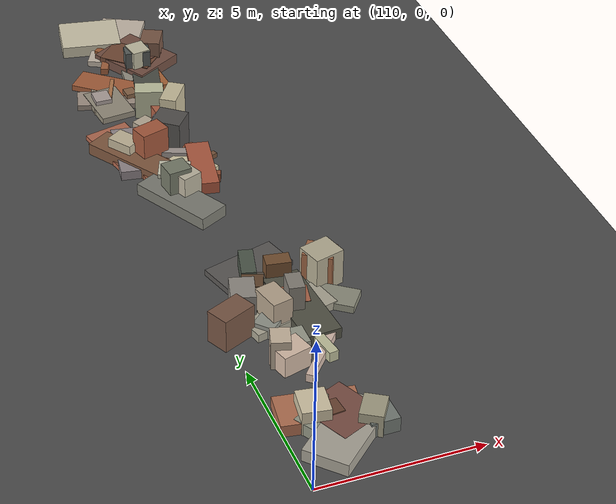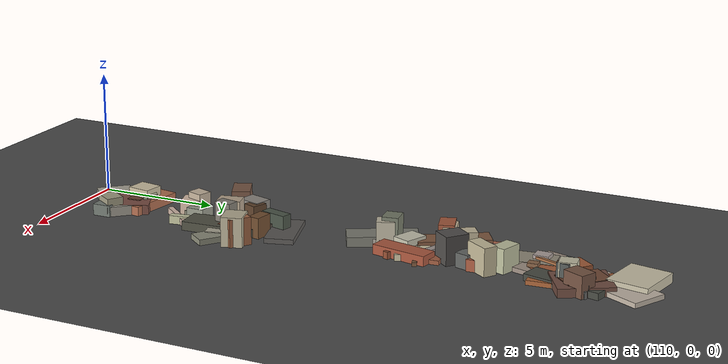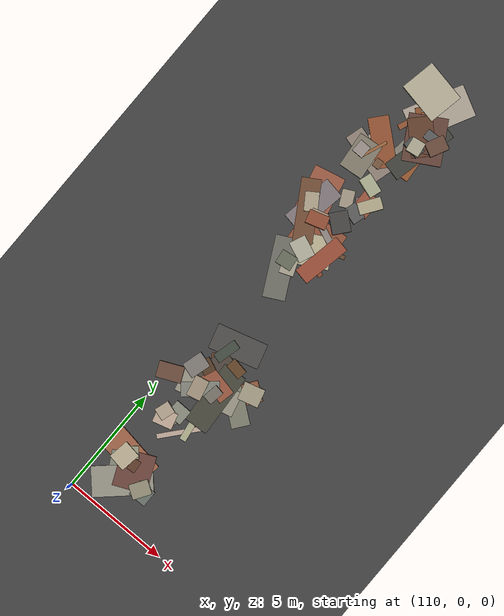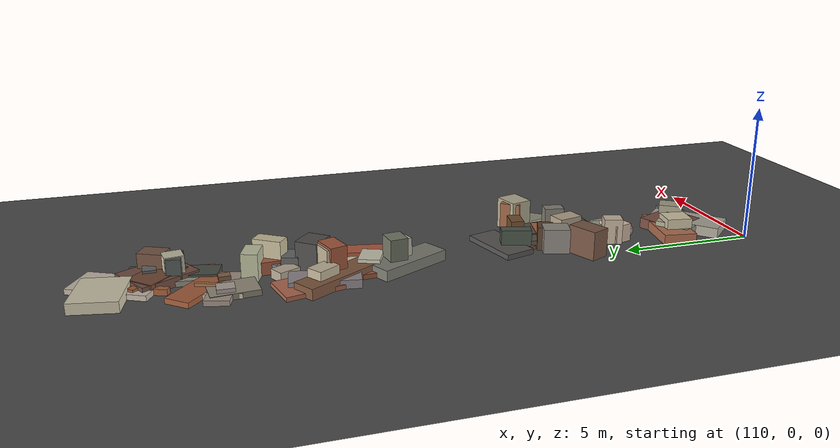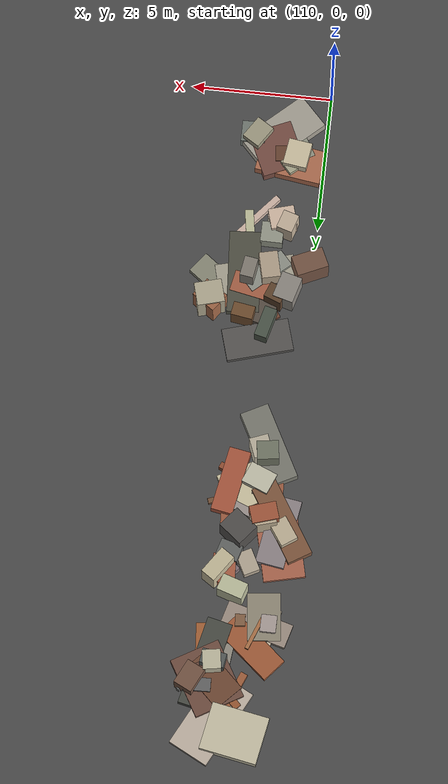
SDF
<sdf version="1.6">
 <world name="navitas_arena">
  <model name="ground_plane">
   <static>true</static>
   <link name="link">
    <collision name="collision">
     <geometry><plane><normal>0 0 1</normal><size>400 400</size></plane></geometry>
     <surface><friction><ode><mu>0.800</mu><mu2>0.800</mu2></ode></friction></surface>
    </collision>
    <visual name="visual">
     <cast_shadows>false</cast_shadows>
     <geometry><plane><normal>0 0 1</normal><size>400 400</size></plane></geometry>
     <material>
      <specular>0.04 0.04 0.04 1</specular>
      <script>
       <uri>file://media/materials/scripts/navitas_asphalt.material</uri>
       <name>Navitas/RealArenaAsphalt</name>
      </script>
     </material>
    </visual>
   </link>
  </model>
  <model name="deb_zor_65">
   <static>true</static>
   <pose>110.626 16.197 0.000 0 0 0</pose>
   <link name="link">
    <collision name="col_0">
     <pose>-0.576 0.071 0.361 0.000 0.000 2.168</pose>
     <geometry><box><size>0.874 0.627 0.723</size></box></geometry>
    </collision>
    <visual name="vis_0">
     <pose>-0.576 0.071 0.361 0.000 0.000 2.168</pose>
     <geometry><box><size>0.874 0.627 0.723</size></box></geometry>
     <material>
      <ambient>0.70 0.66 0.56 1</ambient>
      <diffuse>0.76 0.71 0.60 1</diffuse>
      <specular>0.05 0.05 0.045 1</specular>
     </material>
    </visual>
    <collision name="col_1">
     <pose>-0.475 -0.360 0.199 0.000 0.000 2.123</pose>
     <geometry><box><size>2.891 0.899 0.397</size></box></geometry>
    </collision>
    <visual name="vis_1">
     <pose>-0.475 -0.360 0.199 0.000 0.000 2.123</pose>
     <geometry><box><size>2.891 0.899 0.397</size></box></geometry>
     <material>
      <ambient>0.47 0.32 0.23 1</ambient>
      <diffuse>0.51 0.35 0.25 1</diffuse>
      <specular>0.05 0.05 0.045 1</specular>
     </material>
    </visual>
    <collision name="col_2">
     <pose>0.148 -0.239 0.571 0.000 0.000 1.847</pose>
     <geometry><box><size>0.531 0.853 1.141</size></box></geometry>
    </collision>
    <visual name="vis_2">
     <pose>0.148 -0.239 0.571 0.000 0.000 1.847</pose>
     <geometry><box><size>0.531 0.853 1.141</size></box></geometry>
     <material>
      <ambient>0.69 0.63 0.54 1</ambient>
      <diffuse>0.75 0.69 0.58 1</diffuse>
      <specular>0.05 0.05 0.045 1</specular>
     </material>
    </visual>
    <collision name="col_3">
     <pose>-0.405 -0.003 0.156 0.000 0.000 1.409</pose>
     <geometry><box><size>2.448 1.000 0.311</size></box></geometry>
    </collision>
    <visual name="vis_3">
     <pose>-0.405 -0.003 0.156 0.000 0.000 1.409</pose>
     <geometry><box><size>2.448 1.000 0.311</size></box></geometry>
     <material>
      <ambient>0.53 0.49 0.50 1</ambient>
      <diffuse>0.57 0.53 0.54 1</diffuse>
      <specular>0.05 0.05 0.045 1</specular>
     </material>
    </visual>
    <collision name="col_4">
     <pose>0.140 -0.380 0.614 0.000 0.000 0.301</pose>
     <geometry><box><size>0.938 0.619 1.228</size></box></geometry>
    </collision>
    <visual name="vis_4">
     <pose>0.140 -0.380 0.614 0.000 0.000 0.301</pose>
     <geometry><box><size>0.938 0.619 1.228</size></box></geometry>
     <material>
      <ambient>0.60 0.32 0.22 1</ambient>
      <diffuse>0.65 0.35 0.24 1</diffuse>
      <specular>0.05 0.05 0.045 1</specular>
     </material>
    </visual>
    <collision name="col_5">
     <pose>-0.205 -0.162 0.119 0.000 0.000 1.527</pose>
     <geometry><box><size>0.405 0.203 0.239</size></box></geometry>
    </collision>
    <visual name="vis_5">
     <pose>-0.205 -0.162 0.119 0.000 0.000 1.527</pose>
     <geometry><box><size>0.405 0.203 0.239</size></box></geometry>
     <material>
      <ambient>0.65 0.41 0.30 1</ambient>
      <diffuse>0.71 0.44 0.32 1</diffuse>
      <specular>0.05 0.05 0.045 1</specular>
     </material>
    </visual>
   </link>
  </model>
  <model name="deb_zor_97">
   <static>true</static>
   <pose>112.185 21.778 0.000 0 0 0</pose>
   <link name="link">
    <collision name="col_0">
     <pose>0.489 -0.269 0.141 0.000 0.000 0.930</pose>
     <geometry><box><size>1.298 0.125 0.282</size></box></geometry>
    </collision>
    <visual name="vis_0">
     <pose>0.489 -0.269 0.141 0.000 0.000 0.930</pose>
     <geometry><box><size>1.298 0.125 0.282</size></box></geometry>
     <material>
      <ambient>0.41 0.41 0.40 1</ambient>
      <diffuse>0.45 0.45 0.44 1</diffuse>
      <specular>0.05 0.05 0.045 1</specular>
     </material>
    </visual>
    <collision name="col_1">
     <pose>0.497 -0.127 0.440 0.000 0.000 1.114</pose>
     <geometry><box><size>0.903 0.677 0.881</size></box></geometry>
    </collision>
    <visual name="vis_1">
     <pose>0.497 -0.127 0.440 0.000 0.000 1.114</pose>
     <geometry><box><size>0.903 0.677 0.881</size></box></geometry>
     <material>
      <ambient>0.43 0.31 0.25 1</ambient>
      <diffuse>0.47 0.34 0.27 1</diffuse>
      <specular>0.05 0.05 0.045 1</specular>
     </material>
    </visual>
    <collision name="col_2">
     <pose>-0.269 -0.214 0.184 0.000 0.000 -0.766</pose>
     <geometry><box><size>1.769 1.113 0.369</size></box></geometry>
    </collision>
    <visual name="vis_2">
     <pose>-0.269 -0.214 0.184 0.000 0.000 -0.766</pose>
     <geometry><box><size>1.769 1.113 0.369</size></box></geometry>
     <material>
      <ambient>0.42 0.27 0.20 1</ambient>
      <diffuse>0.45 0.29 0.21 1</diffuse>
      <specular>0.05 0.05 0.045 1</specular>
     </material>
    </visual>
    <collision name="col_3">
     <pose>-0.397 -0.275 0.096 0.000 0.000 1.460</pose>
     <geometry><box><size>2.535 0.667 0.192</size></box></geometry>
    </collision>
    <visual name="vis_3">
     <pose>-0.397 -0.275 0.096 0.000 0.000 1.460</pose>
     <geometry><box><size>2.535 0.667 0.192</size></box></geometry>
     <material>
      <ambient>0.53 0.52 0.47 1</ambient>
      <diffuse>0.58 0.56 0.51 1</diffuse>
      <specular>0.05 0.05 0.045 1</specular>
     </material>
    </visual>
   </link>
  </model>
  <model name="deb_zor_106">
   <static>true</static>
   <pose>111.938 2.142 0.000 0 0 0</pose>
   <link name="link">
    <collision name="col_0">
     <pose>-0.216 0.070 0.202 0.000 0.000 1.993</pose>
     <geometry><box><size>1.708 1.560 0.405</size></box></geometry>
    </collision>
    <visual name="vis_0">
     <pose>-0.216 0.070 0.202 0.000 0.000 1.993</pose>
     <geometry><box><size>1.708 1.560 0.405</size></box></geometry>
     <material>
      <ambient>0.44 0.29 0.25 1</ambient>
      <diffuse>0.48 0.31 0.27 1</diffuse>
      <specular>0.05 0.05 0.045 1</specular>
     </material>
    </visual>
    <collision name="col_1">
     <pose>-0.379 0.249 0.220 0.000 0.000 1.657</pose>
     <geometry><box><size>0.571 0.395 0.440</size></box></geometry>
    </collision>
    <visual name="vis_1">
     <pose>-0.379 0.249 0.220 0.000 0.000 1.657</pose>
     <geometry><box><size>0.571 0.395 0.440</size></box></geometry>
     <material>
      <ambient>0.39 0.25 0.19 1</ambient>
      <diffuse>0.42 0.27 0.20 1</diffuse>
      <specular>0.05 0.05 0.045 1</specular>
     </material>
    </visual>
    <collision name="col_2">
     <pose>-0.680 -0.223 0.197 0.000 0.000 2.084</pose>
     <geometry><box><size>1.585 1.167 0.394</size></box></geometry>
    </collision>
    <visual name="vis_2">
     <pose>-0.680 -0.223 0.197 0.000 0.000 2.084</pose>
     <geometry><box><size>1.585 1.167 0.394</size></box></geometry>
     <material>
      <ambient>0.53 0.55 0.48 1</ambient>
      <diffuse>0.58 0.59 0.52 1</diffuse>
      <specular>0.05 0.05 0.045 1</specular>
     </material>
    </visual>
    <collision name="col_3">
     <pose>0.511 -0.374 0.362 0.000 0.000 -0.573</pose>
     <geometry><box><size>0.684 0.880 0.724</size></box></geometry>
    </collision>
    <visual name="vis_3">
     <pose>0.511 -0.374 0.362 0.000 0.000 -0.573</pose>
     <geometry><box><size>0.684 0.880 0.724</size></box></geometry>
     <material>
      <ambient>0.59 0.57 0.48 1</ambient>
      <diffuse>0.64 0.62 0.52 1</diffuse>
      <specular>0.05 0.05 0.045 1</specular>
     </material>
    </visual>
    <collision name="col_4">
     <pose>-0.353 -0.588 0.199 0.000 0.000 0.747</pose>
     <geometry><box><size>2.726 1.376 0.398</size></box></geometry>
    </collision>
    <visual name="vis_4">
     <pose>-0.353 -0.588 0.199 0.000 0.000 0.747</pose>
     <geometry><box><size>2.726 1.376 0.398</size></box></geometry>
     <material>
      <ambient>0.61 0.59 0.55 1</ambient>
      <diffuse>0.66 0.64 0.59 1</diffuse>
      <specular>0.05 0.05 0.045 1</specular>
     </material>
    </visual>
   </link>
  </model>
  <model name="deb_zor_112">
   <static>true</static>
   <pose>110.945 6.687 0.000 0 0 0</pose>
   <link name="link">
    <collision name="col_0">
     <pose>0.565 0.126 0.520 0.000 0.000 1.800</pose>
     <geometry><box><size>0.954 0.657 1.039</size></box></geometry>
    </collision>
    <visual name="vis_0">
     <pose>0.565 0.126 0.520 0.000 0.000 1.800</pose>
     <geometry><box><size>0.954 0.657 1.039</size></box></geometry>
     <material>
      <ambient>0.66 0.59 0.51 1</ambient>
      <diffuse>0.71 0.64 0.55 1</diffuse>
      <specular>0.05 0.05 0.045 1</specular>
     </material>
    </visual>
    <collision name="col_1">
     <pose>-0.819 -0.118 0.537 0.000 0.000 3.571</pose>
     <geometry><box><size>1.140 0.739 1.074</size></box></geometry>
    </collision>
    <visual name="vis_1">
     <pose>-0.819 -0.118 0.537 0.000 0.000 3.571</pose>
     <geometry><box><size>1.140 0.739 1.074</size></box></geometry>
     <material>
      <ambient>0.43 0.32 0.25 1</ambient>
      <diffuse>0.47 0.34 0.27 1</diffuse>
      <specular>0.05 0.05 0.045 1</specular>
     </material>
    </visual>
    <collision name="col_2">
     <pose>0.670 0.148 0.207 0.000 0.000 3.868</pose>
     <geometry><box><size>1.718 0.661 0.414</size></box></geometry>
    </collision>
    <visual name="vis_2">
     <pose>0.670 0.148 0.207 0.000 0.000 3.868</pose>
     <geometry><box><size>1.718 0.661 0.414</size></box></geometry>
     <material>
      <ambient>0.53 0.54 0.50 1</ambient>
      <diffuse>0.57 0.58 0.54 1</diffuse>
      <specular>0.05 0.05 0.045 1</specular>
     </material>
    </visual>
    <collision name="col_3">
     <pose>-0.129 0.849 0.460 0.000 0.000 2.867</pose>
     <geometry><box><size>0.743 0.963 0.919</size></box></geometry>
    </collision>
    <visual name="vis_3">
     <pose>-0.129 0.849 0.460 0.000 0.000 2.867</pose>
     <geometry><box><size>0.743 0.963 0.919</size></box></geometry>
     <material>
      <ambient>0.52 0.50 0.47 1</ambient>
      <diffuse>0.56 0.54 0.51 1</diffuse>
      <specular>0.05 0.05 0.045 1</specular>
     </material>
    </visual>
    <collision name="col_4">
     <pose>0.931 0.601 0.122 0.000 0.000 2.801</pose>
     <geometry><box><size>0.325 0.287 0.244</size></box></geometry>
    </collision>
    <visual name="vis_4">
     <pose>0.931 0.601 0.122 0.000 0.000 2.801</pose>
     <geometry><box><size>0.325 0.287 0.244</size></box></geometry>
     <material>
      <ambient>0.73 0.67 0.63 1</ambient>
      <diffuse>0.79 0.73 0.68 1</diffuse>
      <specular>0.05 0.05 0.045 1</specular>
     </material>
    </visual>
    <collision name="col_5">
     <pose>0.486 0.368 0.155 0.000 0.000 4.109</pose>
     <geometry><box><size>0.272 0.364 0.309</size></box></geometry>
    </collision>
    <visual name="vis_5">
     <pose>0.486 0.368 0.155 0.000 0.000 4.109</pose>
     <geometry><box><size>0.272 0.364 0.309</size></box></geometry>
     <material>
      <ambient>0.57 0.32 0.21 1</ambient>
      <diffuse>0.61 0.35 0.22 1</diffuse>
      <specular>0.05 0.05 0.045 1</specular>
     </material>
    </visual>
   </link>
  </model>
  <model name="deb_zor_119">
   <static>true</static>
   <pose>111.169 13.205 0.000 0 0 0</pose>
   <link name="link">
    <collision name="col_0">
     <pose>0.189 -0.124 0.164 0.000 0.000 1.588</pose>
     <geometry><box><size>0.516 0.312 0.328</size></box></geometry>
    </collision>
    <visual name="vis_0">
     <pose>0.189 -0.124 0.164 0.000 0.000 1.588</pose>
     <geometry><box><size>0.516 0.312 0.328</size></box></geometry>
     <material>
      <ambient>0.58 0.56 0.52 1</ambient>
      <diffuse>0.63 0.60 0.56 1</diffuse>
      <specular>0.05 0.05 0.045 1</specular>
     </material>
    </visual>
    <collision name="col_1">
     <pose>-0.054 0.224 0.522 0.000 0.000 3.512</pose>
     <geometry><box><size>0.667 0.725 1.044</size></box></geometry>
    </collision>
    <visual name="vis_1">
     <pose>-0.054 0.224 0.522 0.000 0.000 3.512</pose>
     <geometry><box><size>0.667 0.725 1.044</size></box></geometry>
     <material>
      <ambient>0.69 0.66 0.58 1</ambient>
      <diffuse>0.74 0.71 0.63 1</diffuse>
      <specular>0.05 0.05 0.045 1</specular>
     </material>
    </visual>
    <collision name="col_2">
     <pose>-0.299 0.384 0.597 0.000 0.000 1.705</pose>
     <geometry><box><size>0.657 0.748 1.193</size></box></geometry>
    </collision>
    <visual name="vis_2">
     <pose>-0.299 0.384 0.597 0.000 0.000 1.705</pose>
     <geometry><box><size>0.657 0.748 1.193</size></box></geometry>
     <material>
      <ambient>0.43 0.44 0.38 1</ambient>
      <diffuse>0.46 0.48 0.41 1</diffuse>
      <specular>0.05 0.05 0.045 1</specular>
     </material>
    </visual>
    <collision name="col_3">
     <pose>-0.295 -0.034 0.198 0.000 0.000 2.051</pose>
     <geometry><box><size>2.798 1.025 0.396</size></box></geometry>
    </collision>
    <visual name="vis_3">
     <pose>-0.295 -0.034 0.198 0.000 0.000 2.051</pose>
     <geometry><box><size>2.798 1.025 0.396</size></box></geometry>
     <material>
      <ambient>0.46 0.45 0.42 1</ambient>
      <diffuse>0.49 0.49 0.45 1</diffuse>
      <specular>0.05 0.05 0.045 1</specular>
     </material>
    </visual>
   </link>
  </model>
  <model name="deb_zor_123">
   <static>true</static>
   <pose>111.827 15.258 0.000 0 0 0</pose>
   <link name="link">
    <collision name="col_0">
     <pose>0.513 -1.188 0.143 0.000 0.000 2.754</pose>
     <geometry><box><size>0.287 0.234 0.285</size></box></geometry>
    </collision>
    <visual name="vis_0">
     <pose>0.513 -1.188 0.143 0.000 0.000 2.754</pose>
     <geometry><box><size>0.287 0.234 0.285</size></box></geometry>
     <material>
      <ambient>0.54 0.30 0.19 1</ambient>
      <diffuse>0.59 0.32 0.21 1</diffuse>
      <specular>0.05 0.05 0.045 1</specular>
     </material>
    </visual>
    <collision name="col_1">
     <pose>0.227 -1.005 0.107 0.000 0.000 0.828</pose>
     <geometry><box><size>0.308 0.327 0.215</size></box></geometry>
    </collision>
    <visual name="vis_1">
     <pose>0.227 -1.005 0.107 0.000 0.000 0.828</pose>
     <geometry><box><size>0.308 0.327 0.215</size></box></geometry>
     <material>
      <ambient>0.40 0.31 0.19 1</ambient>
      <diffuse>0.43 0.34 0.21 1</diffuse>
      <specular>0.05 0.05 0.045 1</specular>
     </material>
    </visual>
    <collision name="col_2">
     <pose>-0.680 -0.482 0.136 0.000 0.000 1.433</pose>
     <geometry><box><size>0.345 0.231 0.273</size></box></geometry>
    </collision>
    <visual name="vis_2">
     <pose>-0.680 -0.482 0.136 0.000 0.000 1.433</pose>
     <geometry><box><size>0.345 0.231 0.273</size></box></geometry>
     <material>
      <ambient>0.55 0.51 0.47 1</ambient>
      <diffuse>0.60 0.55 0.51 1</diffuse>
      <specular>0.05 0.05 0.045 1</specular>
     </material>
    </visual>
    <collision name="col_3">
     <pose>0.213 -0.679 0.198 0.000 0.000 1.389</pose>
     <geometry><box><size>2.298 0.764 0.397</size></box></geometry>
    </collision>
    <visual name="vis_3">
     <pose>0.213 -0.679 0.198 0.000 0.000 1.389</pose>
     <geometry><box><size>2.298 0.764 0.397</size></box></geometry>
     <material>
      <ambient>0.63 0.33 0.23 1</ambient>
      <diffuse>0.68 0.35 0.25 1</diffuse>
      <specular>0.05 0.05 0.045 1</specular>
     </material>
    </visual>
    <collision name="col_4">
     <pose>0.297 -0.149 0.080 0.000 0.000 0.332</pose>
     <geometry><box><size>1.339 0.183 0.160</size></box></geometry>
    </collision>
    <visual name="vis_4">
     <pose>0.297 -0.149 0.080 0.000 0.000 0.332</pose>
     <geometry><box><size>1.339 0.183 0.160</size></box></geometry>
     <material>
      <ambient>0.44 0.31 0.21 1</ambient>
      <diffuse>0.47 0.33 0.23 1</diffuse>
      <specular>0.05 0.05 0.045 1</specular>
     </material>
    </visual>
   </link>
  </model>
  <model name="deb_zor_143">
   <static>true</static>
   <pose>111.133 16.585 0.000 0 0 0</pose>
   <link name="link">
    <collision name="col_0">
     <pose>0.458 -0.228 0.571 0.000 0.000 2.457</pose>
     <geometry><box><size>0.965 0.844 1.143</size></box></geometry>
    </collision>
    <visual name="vis_0">
     <pose>0.458 -0.228 0.571 0.000 0.000 2.457</pose>
     <geometry><box><size>0.965 0.844 1.143</size></box></geometry>
     <material>
      <ambient>0.29 0.29 0.28 1</ambient>
      <diffuse>0.32 0.31 0.30 1</diffuse>
      <specular>0.05 0.05 0.045 1</specular>
     </material>
    </visual>
    <collision name="col_1">
     <pose>0.691 0.504 0.291 0.000 0.000 2.858</pose>
     <geometry><box><size>0.781 0.590 0.582</size></box></geometry>
    </collision>
    <visual name="vis_1">
     <pose>0.691 0.504 0.291 0.000 0.000 2.858</pose>
     <geometry><box><size>0.781 0.590 0.582</size></box></geometry>
     <material>
      <ambient>0.37 0.38 0.37 1</ambient>
      <diffuse>0.40 0.41 0.40 1</diffuse>
      <specular>0.05 0.05 0.045 1</specular>
     </material>
    </visual>
    <collision name="col_2">
     <pose>0.163 -0.951 0.187 0.000 0.000 2.752</pose>
     <geometry><box><size>1.314 0.301 0.373</size></box></geometry>
    </collision>
    <visual name="vis_2">
     <pose>0.163 -0.951 0.187 0.000 0.000 2.752</pose>
     <geometry><box><size>1.314 0.301 0.373</size></box></geometry>
     <material>
      <ambient>0.58 0.55 0.52 1</ambient>
      <diffuse>0.63 0.59 0.57 1</diffuse>
      <specular>0.05 0.05 0.045 1</specular>
     </material>
    </visual>
    <collision name="col_3">
     <pose>-1.002 0.027 0.080 0.000 0.000 1.799</pose>
     <geometry><box><size>2.464 1.449 0.161</size></box></geometry>
    </collision>
    <visual name="vis_3">
     <pose>-1.002 0.027 0.080 0.000 0.000 1.799</pose>
     <geometry><box><size>2.464 1.449 0.161</size></box></geometry>
     <material>
      <ambient>0.64 0.38 0.28 1</ambient>
      <diffuse>0.69 0.41 0.31 1</diffuse>
      <specular>0.05 0.05 0.045 1</specular>
     </material>
    </visual>
    <collision name="col_4">
     <pose>-0.895 -0.052 0.133 0.000 0.000 1.435</pose>
     <geometry><box><size>0.410 0.284 0.265</size></box></geometry>
    </collision>
    <visual name="vis_4">
     <pose>-0.895 -0.052 0.133 0.000 0.000 1.435</pose>
     <geometry><box><size>0.410 0.284 0.265</size></box></geometry>
     <material>
      <ambient>0.31 0.31 0.32 1</ambient>
      <diffuse>0.34 0.34 0.35 1</diffuse>
      <specular>0.05 0.05 0.045 1</specular>
     </material>
    </visual>
   </link>
  </model>
  <model name="deb_zor_186">
   <static>true</static>
   <pose>112.375 8.440 0.000 0 0 0</pose>
   <link name="link">
    <collision name="col_0">
     <pose>-1.170 -0.659 0.443 0.000 0.000 -0.376</pose>
     <geometry><box><size>0.646 0.576 0.885</size></box></geometry>
    </collision>
    <visual name="vis_0">
     <pose>-1.170 -0.659 0.443 0.000 0.000 -0.376</pose>
     <geometry><box><size>0.646 0.576 0.885</size></box></geometry>
     <material>
      <ambient>0.36 0.25 0.17 1</ambient>
      <diffuse>0.38 0.27 0.18 1</diffuse>
      <specular>0.05 0.05 0.045 1</specular>
     </material>
    </visual>
    <collision name="col_1">
     <pose>1.087 -0.264 0.560 0.000 0.000 0.954</pose>
     <geometry><box><size>0.751 0.927 1.121</size></box></geometry>
    </collision>
    <visual name="vis_1">
     <pose>1.087 -0.264 0.560 0.000 0.000 0.954</pose>
     <geometry><box><size>0.751 0.927 1.121</size></box></geometry>
     <material>
      <ambient>0.59 0.38 0.26 1</ambient>
      <diffuse>0.64 0.41 0.28 1</diffuse>
      <specular>0.05 0.05 0.045 1</specular>
     </material>
    </visual>
    <collision name="col_2">
     <pose>1.113 -0.334 0.597 0.000 0.000 0.270</pose>
     <geometry><box><size>0.967 0.840 1.194</size></box></geometry>
    </collision>
    <visual name="vis_2">
     <pose>1.113 -0.334 0.597 0.000 0.000 0.270</pose>
     <geometry><box><size>0.967 0.840 1.194</size></box></geometry>
     <material>
      <ambient>0.66 0.63 0.54 1</ambient>
      <diffuse>0.71 0.68 0.58 1</diffuse>
      <specular>0.05 0.05 0.045 1</specular>
     </material>
    </visual>
    <collision name="col_3">
     <pose>0.738 -1.019 0.118 0.000 0.000 -0.651</pose>
     <geometry><box><size>2.383 0.852 0.237</size></box></geometry>
    </collision>
    <visual name="vis_3">
     <pose>0.738 -1.019 0.118 0.000 0.000 -0.651</pose>
     <geometry><box><size>2.383 0.852 0.237</size></box></geometry>
     <material>
      <ambient>0.51 0.51 0.45 1</ambient>
      <diffuse>0.55 0.55 0.48 1</diffuse>
      <specular>0.05 0.05 0.045 1</specular>
     </material>
    </visual>
    <collision name="col_4">
     <pose>-0.106 0.096 0.424 0.000 0.000 -0.160</pose>
     <geometry><box><size>0.766 0.486 0.848</size></box></geometry>
    </collision>
    <visual name="vis_4">
     <pose>-0.106 0.096 0.424 0.000 0.000 -0.160</pose>
     <geometry><box><size>0.766 0.486 0.848</size></box></geometry>
     <material>
      <ambient>0.42 0.29 0.18 1</ambient>
      <diffuse>0.45 0.31 0.19 1</diffuse>
      <specular>0.05 0.05 0.045 1</specular>
     </material>
    </visual>
    <collision name="col_5">
     <pose>-0.955 -0.526 0.161 0.000 0.000 1.343</pose>
     <geometry><box><size>1.792 0.672 0.321</size></box></geometry>
    </collision>
    <visual name="vis_5">
     <pose>-0.955 -0.526 0.161 0.000 0.000 1.343</pose>
     <geometry><box><size>1.792 0.672 0.321</size></box></geometry>
     <material>
      <ambient>0.32 0.29 0.25 1</ambient>
      <diffuse>0.35 0.31 0.27 1</diffuse>
      <specular>0.05 0.05 0.045 1</specular>
     </material>
    </visual>
   </link>
  </model>
  <model name="deb_zor_207">
   <static>true</static>
   <pose>112.152 2.496 0.000 0 0 0</pose>
   <link name="link">
    <collision name="col_0">
     <pose>0.467 -0.817 0.235 0.000 0.000 0.006</pose>
     <geometry><box><size>0.853 0.771 0.471</size></box></geometry>
    </collision>
    <visual name="vis_0">
     <pose>0.467 -0.817 0.235 0.000 0.000 0.006</pose>
     <geometry><box><size>0.853 0.771 0.471</size></box></geometry>
     <material>
      <ambient>0.43 0.46 0.42 1</ambient>
      <diffuse>0.46 0.49 0.46 1</diffuse>
      <specular>0.05 0.05 0.045 1</specular>
     </material>
    </visual>
    <collision name="col_1">
     <pose>-0.619 -0.326 0.165 0.000 0.000 0.865</pose>
     <geometry><box><size>1.597 0.299 0.330</size></box></geometry>
    </collision>
    <visual name="vis_1">
     <pose>-0.619 -0.326 0.165 0.000 0.000 0.865</pose>
     <geometry><box><size>1.597 0.299 0.330</size></box></geometry>
     <material>
      <ambient>0.30 0.27 0.27 1</ambient>
      <diffuse>0.33 0.29 0.29 1</diffuse>
      <specular>0.05 0.05 0.045 1</specular>
     </material>
    </visual>
    <collision name="col_2">
     <pose>-1.179 -0.041 0.387 0.000 0.000 -0.148</pose>
     <geometry><box><size>0.840 0.963 0.775</size></box></geometry>
    </collision>
    <visual name="vis_2">
     <pose>-1.179 -0.041 0.387 0.000 0.000 -0.148</pose>
     <geometry><box><size>0.840 0.963 0.775</size></box></geometry>
     <material>
      <ambient>0.76 0.71 0.60 1</ambient>
      <diffuse>0.82 0.77 0.65 1</diffuse>
      <specular>0.05 0.05 0.045 1</specular>
     </material>
    </visual>
    <collision name="col_3">
     <pose>-1.023 0.275 0.286 0.000 0.000 2.286</pose>
     <geometry><box><size>0.576 0.594 0.572</size></box></geometry>
    </collision>
    <visual name="vis_3">
     <pose>-1.023 0.275 0.286 0.000 0.000 2.286</pose>
     <geometry><box><size>0.576 0.594 0.572</size></box></geometry>
     <material>
      <ambient>0.63 0.62 0.52 1</ambient>
      <diffuse>0.68 0.67 0.56 1</diffuse>
      <specular>0.05 0.05 0.045 1</specular>
     </material>
    </visual>
    <collision name="col_4">
     <pose>-0.969 0.106 0.193 0.000 0.000 -0.150</pose>
     <geometry><box><size>2.345 1.240 0.386</size></box></geometry>
    </collision>
    <visual name="vis_4">
     <pose>-0.969 0.106 0.193 0.000 0.000 -0.150</pose>
     <geometry><box><size>2.345 1.240 0.386</size></box></geometry>
     <material>
      <ambient>0.65 0.41 0.30 1</ambient>
      <diffuse>0.70 0.44 0.32 1</diffuse>
      <specular>0.05 0.05 0.045 1</specular>
     </material>
    </visual>
   </link>
  </model>
  <model name="deb_zor_218">
   <static>true</static>
   <pose>112.278 20.988 0.000 0 0 0</pose>
   <link name="link">
    <collision name="col_0">
     <pose>0.169 0.385 0.068 0.000 0.000 1.389</pose>
     <geometry><box><size>1.548 0.141 0.135</size></box></geometry>
    </collision>
    <visual name="vis_0">
     <pose>0.169 0.385 0.068 0.000 0.000 1.389</pose>
     <geometry><box><size>1.548 0.141 0.135</size></box></geometry>
     <material>
      <ambient>0.60 0.56 0.50 1</ambient>
      <diffuse>0.65 0.61 0.54 1</diffuse>
      <specular>0.05 0.05 0.045 1</specular>
     </material>
    </visual>
    <collision name="col_1">
     <pose>-0.325 -0.019 0.457 0.000 0.000 -0.155</pose>
     <geometry><box><size>0.834 0.496 0.914</size></box></geometry>
    </collision>
    <visual name="vis_1">
     <pose>-0.325 -0.019 0.457 0.000 0.000 -0.155</pose>
     <geometry><box><size>0.834 0.496 0.914</size></box></geometry>
     <material>
      <ambient>0.32 0.33 0.32 1</ambient>
      <diffuse>0.34 0.36 0.35 1</diffuse>
      <specular>0.05 0.05 0.045 1</specular>
     </material>
    </visual>
    <collision name="col_2">
     <pose>-0.281 0.038 0.477 0.000 0.000 0.155</pose>
     <geometry><box><size>0.624 0.672 0.954</size></box></geometry>
    </collision>
    <visual name="vis_2">
     <pose>-0.281 0.038 0.477 0.000 0.000 0.155</pose>
     <geometry><box><size>0.624 0.672 0.954</size></box></geometry>
     <material>
      <ambient>0.71 0.68 0.59 1</ambient>
      <diffuse>0.76 0.74 0.64 1</diffuse>
      <specular>0.05 0.05 0.045 1</specular>
     </material>
    </visual>
    <collision name="col_3">
     <pose>0.200 -0.422 0.082 0.000 0.000 0.907</pose>
     <geometry><box><size>1.676 0.153 0.165</size></box></geometry>
    </collision>
    <visual name="vis_3">
     <pose>0.200 -0.422 0.082 0.000 0.000 0.907</pose>
     <geometry><box><size>1.676 0.153 0.165</size></box></geometry>
     <material>
      <ambient>0.56 0.53 0.46 1</ambient>
      <diffuse>0.61 0.57 0.49 1</diffuse>
      <specular>0.05 0.05 0.045 1</specular>
     </material>
    </visual>
    <collision name="col_4">
     <pose>-0.092 0.030 0.091 0.000 0.000 1.649</pose>
     <geometry><box><size>2.804 0.769 0.182</size></box></geometry>
    </collision>
    <visual name="vis_4">
     <pose>-0.092 0.030 0.091 0.000 0.000 1.649</pose>
     <geometry><box><size>2.804 0.769 0.182</size></box></geometry>
     <material>
      <ambient>0.61 0.36 0.21 1</ambient>
      <diffuse>0.66 0.39 0.22 1</diffuse>
      <specular>0.05 0.05 0.045 1</specular>
     </material>
    </visual>
   </link>
  </model>
  <model name="deb_zor_228">
   <static>true</static>
   <pose>111.994 21.532 0.000 0 0 0</pose>
   <link name="link">
    <collision name="col_0">
     <pose>-0.227 0.229 0.099 0.000 0.000 1.387</pose>
     <geometry><box><size>0.298 0.327 0.198</size></box></geometry>
    </collision>
    <visual name="vis_0">
     <pose>-0.227 0.229 0.099 0.000 0.000 1.387</pose>
     <geometry><box><size>0.298 0.327 0.198</size></box></geometry>
     <material>
      <ambient>0.57 0.33 0.20 1</ambient>
      <diffuse>0.62 0.35 0.22 1</diffuse>
      <specular>0.05 0.05 0.045 1</specular>
     </material>
    </visual>
    <collision name="col_1">
     <pose>0.315 -0.306 0.194 0.000 0.000 0.478</pose>
     <geometry><box><size>0.923 0.442 0.387</size></box></geometry>
    </collision>
    <visual name="vis_1">
     <pose>0.315 -0.306 0.194 0.000 0.000 0.478</pose>
     <geometry><box><size>0.923 0.442 0.387</size></box></geometry>
     <material>
      <ambient>0.39 0.26 0.21 1</ambient>
      <diffuse>0.42 0.28 0.23 1</diffuse>
      <specular>0.05 0.05 0.045 1</specular>
     </material>
    </visual>
    <collision name="col_2">
     <pose>0.223 -0.490 0.135 0.000 0.000 1.346</pose>
     <geometry><box><size>3.115 0.885 0.271</size></box></geometry>
    </collision>
    <visual name="vis_2">
     <pose>0.223 -0.490 0.135 0.000 0.000 1.346</pose>
     <geometry><box><size>3.115 0.885 0.271</size></box></geometry>
     <material>
      <ambient>0.27 0.28 0.25 1</ambient>
      <diffuse>0.29 0.30 0.27 1</diffuse>
      <specular>0.05 0.05 0.045 1</specular>
     </material>
    </visual>
    <collision name="col_3">
     <pose>0.106 0.037 0.171 0.000 0.000 2.098</pose>
     <geometry><box><size>2.137 1.768 0.342</size></box></geometry>
    </collision>
    <visual name="vis_3">
     <pose>0.106 0.037 0.171 0.000 0.000 2.098</pose>
     <geometry><box><size>2.137 1.768 0.342</size></box></geometry>
     <material>
      <ambient>0.41 0.29 0.24 1</ambient>
      <diffuse>0.45 0.31 0.26 1</diffuse>
      <specular>0.05 0.05 0.045 1</specular>
     </material>
    </visual>
    <collision name="col_4">
     <pose>0.422 0.292 0.231 0.000 0.000 0.031</pose>
     <geometry><box><size>0.942 0.459 0.461</size></box></geometry>
    </collision>
    <visual name="vis_4">
     <pose>0.422 0.292 0.231 0.000 0.000 0.031</pose>
     <geometry><box><size>0.942 0.459 0.461</size></box></geometry>
     <material>
      <ambient>0.37 0.37 0.37 1</ambient>
      <diffuse>0.40 0.40 0.40 1</diffuse>
      <specular>0.05 0.05 0.045 1</specular>
     </material>
    </visual>
   </link>
  </model>
  <model name="deb_zor_246">
   <static>true</static>
   <pose>111.228 9.046 0.000 0 0 0</pose>
   <link name="link">
    <collision name="col_0">
     <pose>0.134 -0.394 0.087 0.000 0.000 1.586</pose>
     <geometry><box><size>0.367 0.411 0.174</size></box></geometry>
    </collision>
    <visual name="vis_0">
     <pose>0.134 -0.394 0.087 0.000 0.000 1.586</pose>
     <geometry><box><size>0.367 0.411 0.174</size></box></geometry>
     <material>
      <ambient>0.64 0.39 0.28 1</ambient>
      <diffuse>0.69 0.42 0.30 1</diffuse>
      <specular>0.05 0.05 0.045 1</specular>
     </material>
    </visual>
    <collision name="col_1">
     <pose>0.089 -0.712 0.072 0.000 0.000 0.587</pose>
     <geometry><box><size>0.514 0.470 0.144</size></box></geometry>
    </collision>
    <visual name="vis_1">
     <pose>0.089 -0.712 0.072 0.000 0.000 0.587</pose>
     <geometry><box><size>0.514 0.470 0.144</size></box></geometry>
     <material>
      <ambient>0.44 0.27 0.19 1</ambient>
      <diffuse>0.47 0.29 0.21 1</diffuse>
      <specular>0.05 0.05 0.045 1</specular>
     </material>
    </visual>
    <collision name="col_2">
     <pose>0.216 -0.200 0.378 0.000 0.000 1.320</pose>
     <geometry><box><size>1.113 0.447 0.755</size></box></geometry>
    </collision>
    <visual name="vis_2">
     <pose>0.216 -0.200 0.378 0.000 0.000 1.320</pose>
     <geometry><box><size>1.113 0.447 0.755</size></box></geometry>
     <material>
      <ambient>0.28 0.32 0.26 1</ambient>
      <diffuse>0.30 0.34 0.29 1</diffuse>
      <specular>0.05 0.05 0.045 1</specular>
     </material>
    </visual>
    <collision name="col_3">
     <pose>0.448 0.285 0.100 0.000 0.000 0.282</pose>
     <geometry><box><size>2.361 1.167 0.201</size></box></geometry>
    </collision>
    <visual name="vis_3">
     <pose>0.448 0.285 0.100 0.000 0.000 0.282</pose>
     <geometry><box><size>2.361 1.167 0.201</size></box></geometry>
     <material>
      <ambient>0.32 0.32 0.31 1</ambient>
      <diffuse>0.35 0.34 0.33 1</diffuse>
      <specular>0.05 0.05 0.045 1</specular>
     </material>
    </visual>
   </link>
  </model>
  <model name="deb_zor_296">
   <static>true</static>
   <pose>112.214 7.294 0.000 0 0 0</pose>
   <link name="link">
    <collision name="col_0">
     <pose>-0.144 0.133 0.187 0.000 0.000 -0.201</pose>
     <geometry><box><size>1.423 0.768 0.375</size></box></geometry>
    </collision>
    <visual name="vis_0">
     <pose>-0.144 0.133 0.187 0.000 0.000 -0.201</pose>
     <geometry><box><size>1.423 0.768 0.375</size></box></geometry>
     <material>
      <ambient>0.62 0.37 0.26 1</ambient>
      <diffuse>0.67 0.39 0.28 1</diffuse>
      <specular>0.05 0.05 0.045 1</specular>
     </material>
    </visual>
    <collision name="col_1">
     <pose>0.148 0.246 0.106 0.000 0.000 -0.160</pose>
     <geometry><box><size>0.326 0.232 0.212</size></box></geometry>
    </collision>
    <visual name="vis_1">
     <pose>0.148 0.246 0.106 0.000 0.000 -0.160</pose>
     <geometry><box><size>0.326 0.232 0.212</size></box></geometry>
     <material>
      <ambient>0.39 0.37 0.32 1</ambient>
      <diffuse>0.42 0.39 0.34 1</diffuse>
      <specular>0.05 0.05 0.045 1</specular>
     </material>
    </visual>
    <collision name="col_2">
     <pose>-0.096 0.333 0.125 0.000 0.000 1.159</pose>
     <geometry><box><size>1.603 0.164 0.250</size></box></geometry>
    </collision>
    <visual name="vis_2">
     <pose>-0.096 0.333 0.125 0.000 0.000 1.159</pose>
     <geometry><box><size>1.603 0.164 0.250</size></box></geometry>
     <material>
      <ambient>0.61 0.37 0.29 1</ambient>
      <diffuse>0.66 0.40 0.32 1</diffuse>
      <specular>0.05 0.05 0.045 1</specular>
     </material>
    </visual>
    <collision name="col_3">
     <pose>-0.244 -0.316 0.135 0.000 0.000 0.249</pose>
     <geometry><box><size>2.778 1.146 0.270</size></box></geometry>
    </collision>
    <visual name="vis_3">
     <pose>-0.244 -0.316 0.135 0.000 0.000 0.249</pose>
     <geometry><box><size>2.778 1.146 0.270</size></box></geometry>
     <material>
      <ambient>0.62 0.60 0.54 1</ambient>
      <diffuse>0.67 0.65 0.58 1</diffuse>
      <specular>0.05 0.05 0.045 1</specular>
     </material>
    </visual>
    <collision name="col_4">
     <pose>0.187 -0.365 0.179 0.000 0.000 1.638</pose>
     <geometry><box><size>2.980 1.131 0.359</size></box></geometry>
    </collision>
    <visual name="vis_4">
     <pose>0.187 -0.365 0.179 0.000 0.000 1.638</pose>
     <geometry><box><size>2.980 1.131 0.359</size></box></geometry>
     <material>
      <ambient>0.29 0.29 0.25 1</ambient>
      <diffuse>0.32 0.32 0.27 1</diffuse>
      <specular>0.05 0.05 0.045 1</specular>
     </material>
    </visual>
    <collision name="col_5">
     <pose>0.006 -0.271 0.584 0.000 0.000 -0.160</pose>
     <geometry><box><size>0.480 0.729 1.168</size></box></geometry>
    </collision>
    <visual name="vis_5">
     <pose>0.006 -0.271 0.584 0.000 0.000 -0.160</pose>
     <geometry><box><size>0.480 0.729 1.168</size></box></geometry>
     <material>
      <ambient>0.48 0.46 0.42 1</ambient>
      <diffuse>0.52 0.50 0.46 1</diffuse>
      <specular>0.05 0.05 0.045 1</specular>
     </material>
    </visual>
   </link>
  </model>
  <model name="deb_zor_305">
   <static>true</static>
   <pose>110.631 19.610 0.000 0 0 0</pose>
   <link name="link">
    <collision name="col_0">
     <pose>-0.220 -0.396 0.103 0.000 0.000 1.673</pose>
     <geometry><box><size>1.672 1.142 0.207</size></box></geometry>
    </collision>
    <visual name="vis_0">
     <pose>-0.220 -0.396 0.103 0.000 0.000 1.673</pose>
     <geometry><box><size>1.672 1.142 0.207</size></box></geometry>
     <material>
      <ambient>0.53 0.51 0.44 1</ambient>
      <diffuse>0.58 0.55 0.48 1</diffuse>
      <specular>0.05 0.05 0.045 1</specular>
     </material>
    </visual>
    <collision name="col_1">
     <pose>0.040 0.232 0.152 0.000 0.000 1.199</pose>
     <geometry><box><size>1.192 0.128 0.304</size></box></geometry>
    </collision>
    <visual name="vis_1">
     <pose>0.040 0.232 0.152 0.000 0.000 1.199</pose>
     <geometry><box><size>1.192 0.128 0.304</size></box></geometry>
     <material>
      <ambient>0.64 0.42 0.27 1</ambient>
      <diffuse>0.69 0.46 0.29 1</diffuse>
      <specular>0.05 0.05 0.045 1</specular>
     </material>
    </visual>
    <collision name="col_2">
     <pose>0.104 0.677 0.097 0.000 0.000 2.437</pose>
     <geometry><box><size>2.281 0.941 0.195</size></box></geometry>
    </collision>
    <visual name="vis_2">
     <pose>0.104 0.677 0.097 0.000 0.000 2.437</pose>
     <geometry><box><size>2.281 0.941 0.195</size></box></geometry>
     <material>
      <ambient>0.60 0.34 0.21 1</ambient>
      <diffuse>0.65 0.37 0.23 1</diffuse>
      <specular>0.05 0.05 0.045 1</specular>
     </material>
    </visual>
    <collision name="col_3">
     <pose>0.570 -0.179 0.170 0.000 0.000 3.207</pose>
     <geometry><box><size>0.348 0.408 0.340</size></box></geometry>
    </collision>
    <visual name="vis_3">
     <pose>0.570 -0.179 0.170 0.000 0.000 3.207</pose>
     <geometry><box><size>0.348 0.408 0.340</size></box></geometry>
     <material>
      <ambient>0.49 0.36 0.25 1</ambient>
      <diffuse>0.53 0.39 0.28 1</diffuse>
      <specular>0.05 0.05 0.045 1</specular>
     </material>
    </visual>
    <collision name="col_4">
     <pose>-0.491 0.417 0.092 0.000 0.000 1.355</pose>
     <geometry><box><size>2.230 0.158 0.184</size></box></geometry>
    </collision>
    <visual name="vis_4">
     <pose>-0.491 0.417 0.092 0.000 0.000 1.355</pose>
     <geometry><box><size>2.230 0.158 0.184</size></box></geometry>
     <material>
      <ambient>0.75 0.70 0.61 1</ambient>
      <diffuse>0.81 0.75 0.66 1</diffuse>
      <specular>0.05 0.05 0.045 1</specular>
     </material>
    </visual>
    <collision name="col_5">
     <pose>-0.002 -0.119 0.094 0.000 0.000 2.866</pose>
     <geometry><box><size>2.348 0.850 0.188</size></box></geometry>
    </collision>
    <visual name="vis_5">
     <pose>-0.002 -0.119 0.094 0.000 0.000 2.866</pose>
     <geometry><box><size>2.348 0.850 0.188</size></box></geometry>
     <material>
      <ambient>0.58 0.53 0.48 1</ambient>
      <diffuse>0.63 0.57 0.52 1</diffuse>
      <specular>0.05 0.05 0.045 1</specular>
     </material>
    </visual>
    <collision name="col_6">
     <pose>-0.401 -0.153 0.175 0.000 0.000 1.560</pose>
     <geometry><box><size>0.605 0.541 0.350</size></box></geometry>
    </collision>
    <visual name="vis_6">
     <pose>-0.401 -0.153 0.175 0.000 0.000 1.560</pose>
     <geometry><box><size>0.605 0.541 0.350</size></box></geometry>
     <material>
      <ambient>0.63 0.58 0.56 1</ambient>
      <diffuse>0.68 0.63 0.61 1</diffuse>
      <specular>0.05 0.05 0.045 1</specular>
     </material>
    </visual>
   </link>
  </model>
  <model name="deb_zor_309">
   <static>true</static>
   <pose>111.772 17.844 0.000 0 0 0</pose>
   <link name="link">
    <collision name="col_0">
     <pose>0.089 -0.099 0.192 0.000 0.000 0.836</pose>
     <geometry><box><size>0.764 0.541 0.384</size></box></geometry>
    </collision>
    <visual name="vis_0">
     <pose>0.089 -0.099 0.192 0.000 0.000 0.836</pose>
     <geometry><box><size>0.764 0.541 0.384</size></box></geometry>
     <material>
      <ambient>0.49 0.43 0.44 1</ambient>
      <diffuse>0.53 0.46 0.48 1</diffuse>
      <specular>0.05 0.05 0.045 1</specular>
     </material>
    </visual>
    <collision name="col_1">
     <pose>-0.613 -0.465 0.176 0.000 0.000 2.042</pose>
     <geometry><box><size>0.809 0.579 0.352</size></box></geometry>
    </collision>
    <visual name="vis_1">
     <pose>-0.613 -0.465 0.176 0.000 0.000 2.042</pose>
     <geometry><box><size>0.809 0.579 0.352</size></box></geometry>
     <material>
      <ambient>0.67 0.62 0.55 1</ambient>
      <diffuse>0.72 0.67 0.59 1</diffuse>
      <specular>0.05 0.05 0.045 1</specular>
     </material>
    </visual>
    <collision name="col_2">
     <pose>0.164 -0.137 0.234 0.000 0.000 1.616</pose>
     <geometry><box><size>1.024 0.782 0.468</size></box></geometry>
    </collision>
    <visual name="vis_2">
     <pose>0.164 -0.137 0.234 0.000 0.000 1.616</pose>
     <geometry><box><size>1.024 0.782 0.468</size></box></geometry>
     <material>
      <ambient>0.63 0.35 0.25 1</ambient>
      <diffuse>0.68 0.38 0.27 1</diffuse>
      <specular>0.05 0.05 0.045 1</specular>
     </material>
    </visual>
    <collision name="col_3">
     <pose>-0.203 0.606 0.492 0.000 0.000 1.256</pose>
     <geometry><box><size>0.586 0.918 0.985</size></box></geometry>
    </collision>
    <visual name="vis_3">
     <pose>-0.203 0.606 0.492 0.000 0.000 1.256</pose>
     <geometry><box><size>0.586 0.918 0.985</size></box></geometry>
     <material>
      <ambient>0.69 0.70 0.58 1</ambient>
      <diffuse>0.75 0.76 0.63 1</diffuse>
      <specular>0.05 0.05 0.045 1</specular>
     </material>
    </visual>
    <collision name="col_4">
     <pose>0.366 -0.083 0.560 0.000 0.000 0.970</pose>
     <geometry><box><size>1.076 0.548 1.120</size></box></geometry>
    </collision>
    <visual name="vis_4">
     <pose>0.366 -0.083 0.560 0.000 0.000 0.970</pose>
     <geometry><box><size>1.076 0.548 1.120</size></box></geometry>
     <material>
      <ambient>0.72 0.68 0.57 1</ambient>
      <diffuse>0.78 0.74 0.61 1</diffuse>
      <specular>0.05 0.05 0.045 1</specular>
     </material>
    </visual>
   </link>
  </model>
  <model name="deb_zor_340">
   <static>true</static>
   <pose>111.806 14.724 0.000 0 0 0</pose>
   <link name="link">
    <collision name="col_0">
     <pose>0.041 -0.359 0.112 0.000 0.000 1.274</pose>
     <geometry><box><size>1.213 0.259 0.225</size></box></geometry>
    </collision>
    <visual name="vis_0">
     <pose>0.041 -0.359 0.112 0.000 0.000 1.274</pose>
     <geometry><box><size>1.213 0.259 0.225</size></box></geometry>
     <material>
      <ambient>0.53 0.55 0.48 1</ambient>
      <diffuse>0.57 0.59 0.51 1</diffuse>
      <specular>0.05 0.05 0.045 1</specular>
     </material>
    </visual>
    <collision name="col_1">
     <pose>-0.734 -0.311 0.265 0.000 0.000 -0.394</pose>
     <geometry><box><size>0.985 0.778 0.530</size></box></geometry>
    </collision>
    <visual name="vis_1">
     <pose>-0.734 -0.311 0.265 0.000 0.000 -0.394</pose>
     <geometry><box><size>0.985 0.778 0.530</size></box></geometry>
     <material>
      <ambient>0.73 0.71 0.64 1</ambient>
      <diffuse>0.78 0.77 0.69 1</diffuse>
      <specular>0.05 0.05 0.045 1</specular>
     </material>
    </visual>
    <collision name="col_2">
     <pose>-0.563 0.469 0.089 0.000 0.000 0.076</pose>
     <geometry><box><size>2.133 1.650 0.178</size></box></geometry>
    </collision>
    <visual name="vis_2">
     <pose>-0.563 0.469 0.089 0.000 0.000 0.076</pose>
     <geometry><box><size>2.133 1.650 0.178</size></box></geometry>
     <material>
      <ambient>0.59 0.35 0.24 1</ambient>
      <diffuse>0.63 0.37 0.26 1</diffuse>
      <specular>0.05 0.05 0.045 1</specular>
     </material>
    </visual>
    <collision name="col_3">
     <pose>-0.375 -0.081 0.130 0.000 0.000 0.493</pose>
     <geometry><box><size>1.776 1.439 0.261</size></box></geometry>
    </collision>
    <visual name="vis_3">
     <pose>-0.375 -0.081 0.130 0.000 0.000 0.493</pose>
     <geometry><box><size>1.776 1.439 0.261</size></box></geometry>
     <material>
      <ambient>0.76 0.72 0.60 1</ambient>
      <diffuse>0.82 0.78 0.65 1</diffuse>
      <specular>0.05 0.05 0.045 1</specular>
     </material>
    </visual>
   </link>
  </model>
  <model name="deb_zor_355">
   <static>true</static>
   <pose>111.753 5.287 0.000 0 0 0</pose>
   <link name="link">
    <collision name="col_0">
     <pose>-0.703 -0.175 0.476 0.000 0.000 -0.304</pose>
     <geometry><box><size>0.579 0.681 0.952</size></box></geometry>
    </collision>
    <visual name="vis_0">
     <pose>-0.703 -0.175 0.476 0.000 0.000 -0.304</pose>
     <geometry><box><size>0.579 0.681 0.952</size></box></geometry>
     <material>
      <ambient>0.72 0.65 0.57 1</ambient>
      <diffuse>0.78 0.71 0.62 1</diffuse>
      <specular>0.05 0.05 0.045 1</specular>
     </material>
    </visual>
    <collision name="col_1">
     <pose>0.569 0.264 0.170 0.000 0.000 1.723</pose>
     <geometry><box><size>1.929 0.303 0.339</size></box></geometry>
    </collision>
    <visual name="vis_1">
     <pose>0.569 0.264 0.170 0.000 0.000 1.723</pose>
     <geometry><box><size>1.929 0.303 0.339</size></box></geometry>
     <material>
      <ambient>0.70 0.70 0.57 1</ambient>
      <diffuse>0.76 0.76 0.62 1</diffuse>
      <specular>0.05 0.05 0.045 1</specular>
     </material>
    </visual>
    <collision name="col_2">
     <pose>-0.058 -0.328 0.163 0.000 0.000 1.322</pose>
     <geometry><box><size>0.439 0.178 0.325</size></box></geometry>
    </collision>
    <visual name="vis_2">
     <pose>-0.058 -0.328 0.163 0.000 0.000 1.322</pose>
     <geometry><box><size>0.439 0.178 0.325</size></box></geometry>
     <material>
      <ambient>0.49 0.48 0.42 1</ambient>
      <diffuse>0.53 0.52 0.45 1</diffuse>
      <specular>0.05 0.05 0.045 1</specular>
     </material>
    </visual>
    <collision name="col_3">
     <pose>0.458 -0.437 0.134 0.000 0.000 0.870</pose>
     <geometry><box><size>2.235 0.221 0.268</size></box></geometry>
    </collision>
    <visual name="vis_3">
     <pose>0.458 -0.437 0.134 0.000 0.000 0.870</pose>
     <geometry><box><size>2.235 0.221 0.268</size></box></geometry>
     <material>
      <ambient>0.77 0.68 0.62 1</ambient>
      <diffuse>0.83 0.73 0.67 1</diffuse>
      <specular>0.05 0.05 0.045 1</specular>
     </material>
    </visual>
    <collision name="col_4">
     <pose>-0.200 -0.282 0.074 0.000 0.000 1.644</pose>
     <geometry><box><size>0.444 0.247 0.149</size></box></geometry>
    </collision>
    <visual name="vis_4">
     <pose>-0.200 -0.282 0.074 0.000 0.000 1.644</pose>
     <geometry><box><size>0.444 0.247 0.149</size></box></geometry>
     <material>
      <ambient>0.46 0.40 0.40 1</ambient>
      <diffuse>0.49 0.44 0.43 1</diffuse>
      <specular>0.05 0.05 0.045 1</specular>
     </material>
    </visual>
    <collision name="col_5">
     <pose>-0.188 0.135 0.267 0.000 0.000 1.556</pose>
     <geometry><box><size>0.752 0.783 0.535</size></box></geometry>
    </collision>
    <visual name="vis_5">
     <pose>-0.188 0.135 0.267 0.000 0.000 1.556</pose>
     <geometry><box><size>0.752 0.783 0.535</size></box></geometry>
     <material>
      <ambient>0.56 0.57 0.51 1</ambient>
      <diffuse>0.60 0.61 0.55 1</diffuse>
      <specular>0.05 0.05 0.045 1</specular>
     </material>
    </visual>
    <collision name="col_6">
     <pose>-0.496 -0.411 0.343 0.000 0.000 0.275</pose>
     <geometry><box><size>0.918 0.747 0.686</size></box></geometry>
    </collision>
    <visual name="vis_6">
     <pose>-0.496 -0.411 0.343 0.000 0.000 0.275</pose>
     <geometry><box><size>0.918 0.747 0.686</size></box></geometry>
     <material>
      <ambient>0.78 0.69 0.61 1</ambient>
      <diffuse>0.84 0.74 0.66 1</diffuse>
      <specular>0.05 0.05 0.045 1</specular>
     </material>
    </visual>
   </link>
  </model>
  <model name="deb_zor_399">
   <static>true</static>
   <pose>110.997 22.648 0.000 0 0 0</pose>
   <link name="link">
    <collision name="col_0">
     <pose>0.166 -0.698 0.110 0.000 0.000 1.175</pose>
     <geometry><box><size>1.541 0.249 0.221</size></box></geometry>
    </collision>
    <visual name="vis_0">
     <pose>0.166 -0.698 0.110 0.000 0.000 1.175</pose>
     <geometry><box><size>1.541 0.249 0.221</size></box></geometry>
     <material>
      <ambient>0.59 0.35 0.22 1</ambient>
      <diffuse>0.64 0.38 0.24 1</diffuse>
      <specular>0.05 0.05 0.045 1</specular>
     </material>
    </visual>
    <collision name="col_1">
     <pose>-0.012 0.706 0.197 0.000 0.000 -0.185</pose>
     <geometry><box><size>1.990 1.650 0.395</size></box></geometry>
    </collision>
    <visual name="vis_1">
     <pose>-0.012 0.706 0.197 0.000 0.000 -0.185</pose>
     <geometry><box><size>1.990 1.650 0.395</size></box></geometry>
     <material>
      <ambient>0.74 0.71 0.62 1</ambient>
      <diffuse>0.80 0.77 0.67 1</diffuse>
      <specular>0.05 0.05 0.045 1</specular>
     </material>
    </visual>
    <collision name="col_2">
     <pose>0.817 0.238 0.098 0.000 0.000 1.094</pose>
     <geometry><box><size>2.898 1.480 0.195</size></box></geometry>
    </collision>
    <visual name="vis_2">
     <pose>0.817 0.238 0.098 0.000 0.000 1.094</pose>
     <geometry><box><size>2.898 1.480 0.195</size></box></geometry>
     <material>
      <ambient>0.71 0.67 0.61 1</ambient>
      <diffuse>0.77 0.72 0.66 1</diffuse>
      <specular>0.05 0.05 0.045 1</specular>
     </material>
    </visual>
    <collision name="col_3">
     <pose>0.344 -0.592 0.143 0.000 0.000 2.351</pose>
     <geometry><box><size>1.091 0.265 0.286</size></box></geometry>
    </collision>
    <visual name="vis_3">
     <pose>0.344 -0.592 0.143 0.000 0.000 2.351</pose>
     <geometry><box><size>1.091 0.265 0.286</size></box></geometry>
     <material>
      <ambient>0.58 0.33 0.20 1</ambient>
      <diffuse>0.62 0.36 0.21 1</diffuse>
      <specular>0.05 0.05 0.045 1</specular>
     </material>
    </visual>
    <collision name="col_4">
     <pose>0.175 0.777 0.070 0.000 0.000 1.405</pose>
     <geometry><box><size>0.285 0.197 0.141</size></box></geometry>
    </collision>
    <visual name="vis_4">
     <pose>0.175 0.777 0.070 0.000 0.000 1.405</pose>
     <geometry><box><size>0.285 0.197 0.141</size></box></geometry>
     <material>
      <ambient>0.55 0.49 0.47 1</ambient>
      <diffuse>0.59 0.53 0.51 1</diffuse>
      <specular>0.05 0.05 0.045 1</specular>
     </material>
    </visual>
   </link>
  </model>
 </world>
</sdf>
